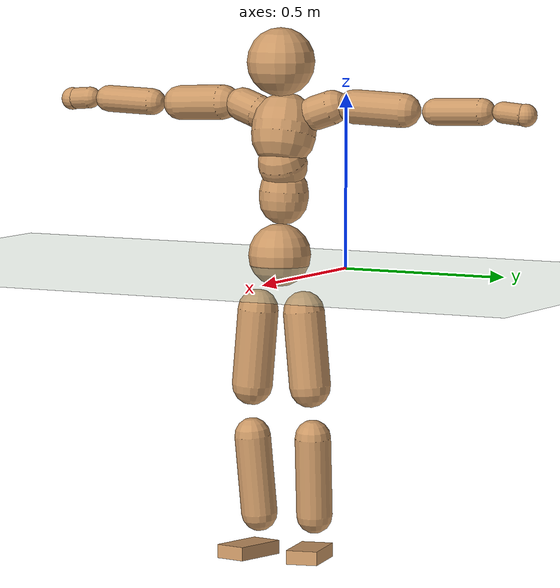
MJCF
<mujoco model="humanoid">
  <compiler coordinate="local"/>
  <default>
    <joint damping="0.0" armature="0.01" stiffness="0.0" limited="true"/>
    <geom conaffinity="1" condim="3" contype="7" margin="0.001" rgba="0.8 0.6 .4 1"/>
  </default>
  <asset>
    <texture type="skybox" builtin="gradient" rgb1=".4 .5 .6" rgb2="0 0 0" width="100" height="100"/>
    <texture builtin="flat" height="1278" mark="cross" markrgb="1 1 1" name="texgeom" random="0.01" rgb1="0.8 0.6 0.4" rgb2="0.8 0.6 0.4" type="cube" width="127"/>
    <texture builtin="checker" height="100" name="texplane" rgb1="0 0 0" rgb2="0.8 0.8 0.8" type="2d" width="100"/>
    <material name="MatPlane" reflectance="0.5" shininess="1" specular="1" texrepeat="60 60" texture="texplane"/>
    <material name="geom" texture="texgeom" texuniform="true"/>
  </asset>
  <worldbody>
    <light cutoff="100" diffuse="1 1 1" dir="-0 0 -1.3" directional="true" exponent="1" pos="0 0 1.3" specular=".1 .1 .1"/>
    <geom conaffinity="1" condim="3" name="floor" pos="0 0 0" rgba="0.8 0.9 0.8 1" size="100 100 .2" type="plane" material="MatPlane"/>
    <body name="Pelvis" pos="-0.0015 -0.2161 0.0285">
      <freejoint name="Pelvis"/>
      <geom type="sphere" contype="1" conaffinity="1" density="500" size="0.0910" pos="0.0000 0.0000 0.0000" name="Pelvis"/>
      <body name="L_Hip" pos="-0.0066 0.0682 -0.0887">
        <joint name="L_Hip_x" type="hinge" pos="0 0 0" axis="1 0 0" stiffness="800" damping="80" armature="0.02" range="-180.0000 180.0000"/>
        <joint name="L_Hip_y" type="hinge" pos="0 0 0" axis="0 1 0" stiffness="800" damping="80" armature="0.02" range="-180.0000 180.0000"/>
        <joint name="L_Hip_z" type="hinge" pos="0 0 0" axis="0 0 1" stiffness="800" damping="80" armature="0.02" range="-180.0000 180.0000"/>
        <geom type="capsule" contype="1" conaffinity="1" density="500" fromto="-0.0006 0.0066 -0.0725 -0.0026 0.0262 -0.2901" size="0.0598" name="L_Hip"/>
        <body name="L_Knee" pos="-0.0032 0.0328 -0.3626">
          <joint name="L_Knee_x" type="hinge" pos="0 0 0" axis="1 0 0" stiffness="800" damping="80" armature="0.02" range="-180.0000 180.0000"/>
          <joint name="L_Knee_y" type="hinge" pos="0 0 0" axis="0 1 0" stiffness="800" damping="80" armature="0.02" range="-180.0000 180.0000"/>
          <joint name="L_Knee_z" type="hinge" pos="0 0 0" axis="0 0 1" stiffness="800" damping="80" armature="0.02" range="-180.0000 180.0000"/>
          <geom type="capsule" contype="1" conaffinity="1" density="500" fromto="-0.0084 -0.0025 -0.0767 -0.0336 -0.0102 -0.3069" size="0.0524" name="L_Knee"/>
          <body name="L_Ankle" pos="-0.042 -0.0127 -0.3837">
            <joint name="L_Ankle_x" type="hinge" pos="0 0 0" axis="1 0 0" stiffness="800" damping="80" armature="0.02" range="-180.0000 180.0000"/>
            <joint name="L_Ankle_y" type="hinge" pos="0 0 0" axis="0 1 0" stiffness="800" damping="80" armature="0.02" range="-180.0000 180.0000"/>
            <joint name="L_Ankle_z" type="hinge" pos="0 0 0" axis="0 0 1" stiffness="800" damping="80" armature="0.02" range="-180.0000 180.0000"/>
            <geom type="box" contype="1" conaffinity="1" density="500" pos="0.0581 0.0122 -0.0271" size="0.0832 0.0461 0.0201" quat="0.9946 0.0000 0.0000 0.1033" name="L_Ankle"/>
            <body name="L_Toe" pos="0.1162 0.0244 -0.0543">
              <joint name="L_Toe_x" type="hinge" pos="0 0 0" axis="1 0 0" stiffness="500" damping="50" armature="0.02" range="-180.0000 180.0000"/>
              <joint name="L_Toe_y" type="hinge" pos="0 0 0" axis="0 1 0" stiffness="500" damping="50" armature="0.02" range="-180.0000 180.0000"/>
              <joint name="L_Toe_z" type="hinge" pos="0 0 0" axis="0 0 1" stiffness="500" damping="50" armature="0.02" range="-180.0000 180.0000"/>
              <geom type="box" contype="1" conaffinity="1" density="500" pos="0.0000 0.0000 0.0264" size="0.001 0.0023 0.001" quat="0.9940 0.0000 0.0000 0.1097" name="L_Toe"/>
            </body>
          </body>
        </body>
      </body>
      <body name="R_Hip" pos="-0.0038 -0.0662 -0.0877">
        <joint name="R_Hip_x" type="hinge" pos="0 0 0" axis="1 0 0" stiffness="800" damping="80" armature="0.02" range="-180.0000 180.0000"/>
        <joint name="R_Hip_y" type="hinge" pos="0 0 0" axis="0 1 0" stiffness="800" damping="80" armature="0.02" range="-180.0000 180.0000"/>
        <joint name="R_Hip_z" type="hinge" pos="0 0 0" axis="0 0 1" stiffness="800" damping="80" armature="0.02" range="-180.0000 180.0000"/>
        <geom type="capsule" contype="1" conaffinity="1" density="500" fromto="-0.0014 -0.0073 -0.0740 -0.0055 -0.0293 -0.2958" size="0.059" name="R_Hip"/>
        <body name="R_Knee" pos="-0.0069 -0.0367 -0.3698">
          <joint name="R_Knee_x" type="hinge" pos="0 0 0" axis="1 0 0" stiffness="800" damping="80" armature="0.02" range="-180.0000 180.0000"/>
          <joint name="R_Knee_y" type="hinge" pos="0 0 0" axis="0 1 0" stiffness="800" damping="80" armature="0.02" range="-180.0000 180.0000"/>
          <joint name="R_Knee_z" type="hinge" pos="0 0 0" axis="0 0 1" stiffness="800" damping="80" armature="0.02" range="-180.0000 180.0000"/>
          <geom type="capsule" contype="1" conaffinity="1" density="500" fromto="-0.0082 0.0030 -0.0768 -0.0326 0.0118 -0.3070" size="0.0526" name="R_Knee"/>
          <body name="R_Ankle" pos="-0.0408 0.0148 -0.3838">
            <joint name="R_Ankle_x" type="hinge" pos="0 0 0" axis="1 0 0" stiffness="800" damping="80" armature="0.02" range="-180.0000 180.0000"/>
            <joint name="R_Ankle_y" type="hinge" pos="0 0 0" axis="0 1 0" stiffness="800" damping="80" armature="0.02" range="-180.0000 180.0000"/>
            <joint name="R_Ankle_z" type="hinge" pos="0 0 0" axis="0 0 1" stiffness="800" damping="80" armature="0.02" range="-180.0000 180.0000"/>
            <geom type="box" contype="1" conaffinity="1" density="500" pos="0.0599 -0.0113 -0.0230" size="0.0843 0.0467 0.0198" quat="0.9957 0.0000 0.0000 -0.0930" name="R_Ankle"/>
            <body name="R_Toe" pos="0.1199 -0.0226 -0.046">
              <joint name="R_Toe_x" type="hinge" pos="0 0 0" axis="1 0 0" stiffness="500" damping="50" armature="0.02" range="-180.0000 180.0000"/>
              <joint name="R_Toe_y" type="hinge" pos="0 0 0" axis="0 1 0" stiffness="500" damping="50" armature="0.02" range="-180.0000 180.0000"/>
              <joint name="R_Toe_z" type="hinge" pos="0 0 0" axis="0 0 1" stiffness="500" damping="50" armature="0.02" range="-180.0000 180.0000"/>
              <geom type="box" contype="1" conaffinity="1" density="500" pos="0.0000 0.0000 0.0242" size="0.0009 0.0023 0.0011" quat="0.9965 0.0000 0.0000 -0.0836" name="R_Toe"/>
            </body>
          </body>
        </body>
      </body>
      <body name="Torso" pos="-0.0249 -0.0025 0.1047">
        <joint name="Torso_x" type="hinge" pos="0 0 0" axis="1 0 0" stiffness="1000" damping="100" armature="0.02" range="-180.0000 180.0000"/>
        <joint name="Torso_y" type="hinge" pos="0 0 0" axis="0 1 0" stiffness="1000" damping="100" armature="0.02" range="-180.0000 180.0000"/>
        <joint name="Torso_z" type="hinge" pos="0 0 0" axis="0 0 1" stiffness="1000" damping="100" armature="0.02" range="-180.0000 180.0000"/>
        <geom type="capsule" contype="1" conaffinity="1" density="500" fromto="-0.0005 0.0029 0.0786 -0.0004 0.0019 0.0524" size="0.0712" name="Torso"/>
        <body name="Spine" pos="-0.0009 0.0048 0.131">
          <joint name="Spine_x" type="hinge" pos="0 0 0" axis="1 0 0" stiffness="1000" damping="100" armature="0.02" range="-180.0000 180.0000"/>
          <joint name="Spine_y" type="hinge" pos="0 0 0" axis="0 1 0" stiffness="1000" damping="100" armature="0.02" range="-180.0000 180.0000"/>
          <joint name="Spine_z" type="hinge" pos="0 0 0" axis="0 0 1" stiffness="1000" damping="100" armature="0.02" range="-180.0000 180.0000"/>
          <geom type="capsule" contype="1" conaffinity="1" density="500" fromto="0.0149 0.0010 0.0303 0.0099 0.0007 0.0202" size="0.0711" name="Spine"/>
          <body name="Chest" pos="0.0248 0.0017 0.0504">
            <joint name="Chest_x" type="hinge" pos="0 0 0" axis="1 0 0" stiffness="1000" damping="100" armature="0.02" range="-180.0000 180.0000"/>
            <joint name="Chest_y" type="hinge" pos="0 0 0" axis="0 1 0" stiffness="1000" damping="100" armature="0.02" range="-180.0000 180.0000"/>
            <joint name="Chest_z" type="hinge" pos="0 0 0" axis="0 0 1" stiffness="1000" damping="100" armature="0.02" range="-180.0000 180.0000"/>
            <geom type="capsule" contype="1" conaffinity="1" density="500" fromto="-0.0240 -0.0010 0.0883 -0.0160 -0.0007 0.0589" size="0.0936" name="Chest"/>
            <body name="Neck" pos="-0.0452 -0.0024 0.208">
              <joint name="Neck_x" type="hinge" pos="0 0 0" axis="1 0 0" stiffness="500" damping="50" armature="0.02" range="-180.0000 180.0000"/>
              <joint name="Neck_y" type="hinge" pos="0 0 0" axis="0 1 0" stiffness="500" damping="50" armature="0.02" range="-180.0000 180.0000"/>
              <joint name="Neck_z" type="hinge" pos="0 0 0" axis="0 0 1" stiffness="500" damping="50" armature="0.02" range="-180.0000 180.0000"/>
              <geom type="capsule" contype="1" conaffinity="1" density="500" fromto="0.0100 0.0010 0.0126 0.0400 0.0040 0.0503" size="0.0418" name="Neck"/>
              <body name="Head" pos="0.05 0.005 0.0629">
                <joint name="Head_x" type="hinge" pos="0 0 0" axis="1 0 0" stiffness="500" damping="50" armature="0.02" range="-180.0000 180.0000"/>
                <joint name="Head_y" type="hinge" pos="0 0 0" axis="0 1 0" stiffness="500" damping="50" armature="0.02" range="-180.0000 180.0000"/>
                <joint name="Head_z" type="hinge" pos="0 0 0" axis="0 0 1" stiffness="500" damping="50" armature="0.02" range="-180.0000 180.0000"/>
                <geom type="sphere" contype="1" conaffinity="1" density="500" size="0.0988" pos="0.0000 0.0000 0.0000" name="Head"/>
              </body>
            </body>
            <body name="L_Thorax" pos="-0.0352 0.0748 0.1182">
              <joint name="L_Thorax_x" type="hinge" pos="0 0 0" axis="1 0 0" stiffness="500" damping="50" armature="0.02" range="-180.0000 180.0000"/>
              <joint name="L_Thorax_y" type="hinge" pos="0 0 0" axis="0 1 0" stiffness="500" damping="50" armature="0.02" range="-180.0000 180.0000"/>
              <joint name="L_Thorax_z" type="hinge" pos="0 0 0" axis="0 0 1" stiffness="500" damping="50" armature="0.02" range="-180.0000 180.0000"/>
              <geom type="capsule" contype="1" conaffinity="1" density="500" fromto="-0.0014 0.0174 0.0060 -0.0056 0.0696 0.0240" size="0.0498" name="L_Thorax"/>
              <body name="L_Shoulder" pos="-0.007 0.0871 0.03">
                <joint name="L_Shoulder_x" type="hinge" pos="0 0 0" axis="1 0 0" stiffness="500" damping="50" armature="0.02" range="-720.0000 720.0000"/>
                <joint name="L_Shoulder_y" type="hinge" pos="0 0 0" axis="0 1 0" stiffness="500" damping="50" armature="0.02" range="-720.0000 720.0000"/>
                <joint name="L_Shoulder_z" type="hinge" pos="0 0 0" axis="0 0 1" stiffness="500" damping="50" armature="0.02" range="-720.0000 720.0000"/>
                <geom type="capsule" contype="1" conaffinity="1" density="500" fromto="-0.0053 0.0502 -0.0023 -0.0214 0.2008 -0.0094" size="0.0494" name="L_Shoulder"/>
                <body name="L_Elbow" pos="-0.0267 0.2509 -0.0117">
                  <joint name="L_Elbow_x" type="hinge" pos="0 0 0" axis="1 0 0" stiffness="500" damping="50" armature="0.02" range="-720.0000 720.0000"/>
                  <joint name="L_Elbow_y" type="hinge" pos="0 0 0" axis="0 1 0" stiffness="500" damping="50" armature="0.02" range="-720.0000 720.0000"/>
                  <joint name="L_Elbow_z" type="hinge" pos="0 0 0" axis="0 0 1" stiffness="500" damping="50" armature="0.02" range="-720.0000 720.0000"/>
                  <geom type="capsule" contype="1" conaffinity="1" density="500" fromto="-0.0002 0.0484 0.0017 -0.0007 0.1936 0.0069" size="0.0389" name="L_Elbow"/>
                  <body name="L_Wrist" pos="-0.0009 0.242 0.0086">
                    <joint name="L_Wrist_x" type="hinge" pos="0 0 0" axis="1 0 0" stiffness="300" damping="30" armature="0.02" range="-180.0000 180.0000"/>
                    <joint name="L_Wrist_y" type="hinge" pos="0 0 0" axis="0 1 0" stiffness="300" damping="30" armature="0.02" range="-180.0000 180.0000"/>
                    <joint name="L_Wrist_z" type="hinge" pos="0 0 0" axis="0 0 1" stiffness="300" damping="30" armature="0.02" range="-180.0000 180.0000"/>
                    <geom type="capsule" contype="1" conaffinity="1" density="500" fromto="-0.0028 0.0163 -0.0017 -0.0114 0.0653 -0.0069" size="0.0308" name="L_Wrist"/>
                    <body name="L_Hand" pos="-0.0142 0.0816 -0.0086">
                      <joint name="L_Hand_x" type="hinge" pos="0 0 0" axis="1 0 0" stiffness="300" damping="30" armature="0.02" range="-180.0000 180.0000"/>
                      <joint name="L_Hand_y" type="hinge" pos="0 0 0" axis="0 1 0" stiffness="300" damping="30" armature="0.02" range="-180.0000 180.0000"/>
                      <joint name="L_Hand_z" type="hinge" pos="0 0 0" axis="0 0 1" stiffness="300" damping="30" armature="0.02" range="-180.0000 180.0000"/>
                      <geom type="sphere" contype="1" conaffinity="1" density="500" size="0.0327" pos="0.0000 0.0000 0.0000" name="L_Hand"/>
                    </body>
                  </body>
                </body>
              </body>
            </body>
            <body name="R_Thorax" pos="-0.0398 -0.0774 0.1156">
              <joint name="R_Thorax_x" type="hinge" pos="0 0 0" axis="1 0 0" stiffness="500" damping="50" armature="0.02" range="-180.0000 180.0000"/>
              <joint name="R_Thorax_y" type="hinge" pos="0 0 0" axis="0 1 0" stiffness="500" damping="50" armature="0.02" range="-180.0000 180.0000"/>
              <joint name="R_Thorax_z" type="hinge" pos="0 0 0" axis="0 0 1" stiffness="500" damping="50" armature="0.02" range="-180.0000 180.0000"/>
              <geom type="capsule" contype="1" conaffinity="1" density="500" fromto="-0.0017 -0.0184 0.0063 -0.0070 -0.0735 0.0251" size="0.0489" name="R_Thorax"/>
              <body name="R_Shoulder" pos="-0.0087 -0.0919 0.0314">
                <joint name="R_Shoulder_x" type="hinge" pos="0 0 0" axis="1 0 0" stiffness="500" damping="50" armature="0.02" range="-720.0000 720.0000"/>
                <joint name="R_Shoulder_y" type="hinge" pos="0 0 0" axis="0 1 0" stiffness="500" damping="50" armature="0.02" range="-720.0000 720.0000"/>
                <joint name="R_Shoulder_z" type="hinge" pos="0 0 0" axis="0 0 1" stiffness="500" damping="50" armature="0.02" range="-720.0000 720.0000"/>
                <geom type="capsule" contype="1" conaffinity="1" density="500" fromto="-0.0040 -0.0493 -0.0024 -0.0159 -0.1970 -0.0097" size="0.0507" name="R_Shoulder"/>
                <body name="R_Elbow" pos="-0.0199 -0.2463 -0.0121">
                  <joint name="R_Elbow_x" type="hinge" pos="0 0 0" axis="1 0 0" stiffness="500" damping="50" armature="0.02" range="-720.0000 720.0000"/>
                  <joint name="R_Elbow_y" type="hinge" pos="0 0 0" axis="0 1 0" stiffness="500" damping="50" armature="0.02" range="-720.0000 720.0000"/>
                  <joint name="R_Elbow_z" type="hinge" pos="0 0 0" axis="0 0 1" stiffness="500" damping="50" armature="0.02" range="-720.0000 720.0000"/>
                  <geom type="capsule" contype="1" conaffinity="1" density="500" fromto="-0.0010 -0.0496 0.0015 -0.0042 -0.1986 0.0059" size="0.039" name="R_Elbow"/>
                  <body name="R_Wrist" pos="-0.0052 -0.2482 0.0074">
                    <joint name="R_Wrist_x" type="hinge" pos="0 0 0" axis="1 0 0" stiffness="300" damping="30" armature="0.02" range="-180.0000 180.0000"/>
                    <joint name="R_Wrist_y" type="hinge" pos="0 0 0" axis="0 1 0" stiffness="300" damping="30" armature="0.02" range="-180.0000 180.0000"/>
                    <joint name="R_Wrist_z" type="hinge" pos="0 0 0" axis="0 0 1" stiffness="300" damping="30" armature="0.02" range="-180.0000 180.0000"/>
                    <geom type="capsule" contype="1" conaffinity="1" density="500" fromto="-0.0021 -0.0165 -0.0013 -0.0082 -0.0659 -0.0052" size="0.0316" name="R_Wrist"/>
                    <body name="R_Hand" pos="-0.0103 -0.0824 -0.0065">
                      <joint name="R_Hand_x" type="hinge" pos="0 0 0" axis="1 0 0" stiffness="300" damping="30" armature="0.02" range="-180.0000 180.0000"/>
                      <joint name="R_Hand_y" type="hinge" pos="0 0 0" axis="0 1 0" stiffness="300" damping="30" armature="0.02" range="-180.0000 180.0000"/>
                      <joint name="R_Hand_z" type="hinge" pos="0 0 0" axis="0 0 1" stiffness="300" damping="30" armature="0.02" range="-180.0000 180.0000"/>
                      <geom type="sphere" contype="1" conaffinity="1" density="500" size="0.0331" pos="0.0000 0.0000 0.0000" name="R_Hand"/>
                    </body>
                  </body>
                </body>
              </body>
            </body>
          </body>
        </body>
      </body>
    </body>
  </worldbody>
  <actuator>
    <motor name="L_Hip_x" joint="L_Hip_x" gear="500"/>
    <motor name="L_Hip_y" joint="L_Hip_y" gear="500"/>
    <motor name="L_Hip_z" joint="L_Hip_z" gear="500"/>
    <motor name="L_Knee_x" joint="L_Knee_x" gear="500"/>
    <motor name="L_Knee_y" joint="L_Knee_y" gear="500"/>
    <motor name="L_Knee_z" joint="L_Knee_z" gear="500"/>
    <motor name="L_Ankle_x" joint="L_Ankle_x" gear="500"/>
    <motor name="L_Ankle_y" joint="L_Ankle_y" gear="500"/>
    <motor name="L_Ankle_z" joint="L_Ankle_z" gear="500"/>
    <motor name="L_Toe_x" joint="L_Toe_x" gear="500"/>
    <motor name="L_Toe_y" joint="L_Toe_y" gear="500"/>
    <motor name="L_Toe_z" joint="L_Toe_z" gear="500"/>
    <motor name="R_Hip_x" joint="R_Hip_x" gear="500"/>
    <motor name="R_Hip_y" joint="R_Hip_y" gear="500"/>
    <motor name="R_Hip_z" joint="R_Hip_z" gear="500"/>
    <motor name="R_Knee_x" joint="R_Knee_x" gear="500"/>
    <motor name="R_Knee_y" joint="R_Knee_y" gear="500"/>
    <motor name="R_Knee_z" joint="R_Knee_z" gear="500"/>
    <motor name="R_Ankle_x" joint="R_Ankle_x" gear="500"/>
    <motor name="R_Ankle_y" joint="R_Ankle_y" gear="500"/>
    <motor name="R_Ankle_z" joint="R_Ankle_z" gear="500"/>
    <motor name="R_Toe_x" joint="R_Toe_x" gear="500"/>
    <motor name="R_Toe_y" joint="R_Toe_y" gear="500"/>
    <motor name="R_Toe_z" joint="R_Toe_z" gear="500"/>
    <motor name="Torso_x" joint="Torso_x" gear="500"/>
    <motor name="Torso_y" joint="Torso_y" gear="500"/>
    <motor name="Torso_z" joint="Torso_z" gear="500"/>
    <motor name="Spine_x" joint="Spine_x" gear="500"/>
    <motor name="Spine_y" joint="Spine_y" gear="500"/>
    <motor name="Spine_z" joint="Spine_z" gear="500"/>
    <motor name="Chest_x" joint="Chest_x" gear="500"/>
    <motor name="Chest_y" joint="Chest_y" gear="500"/>
    <motor name="Chest_z" joint="Chest_z" gear="500"/>
    <motor name="Neck_x" joint="Neck_x" gear="500"/>
    <motor name="Neck_y" joint="Neck_y" gear="500"/>
    <motor name="Neck_z" joint="Neck_z" gear="500"/>
    <motor name="Head_x" joint="Head_x" gear="500"/>
    <motor name="Head_y" joint="Head_y" gear="500"/>
    <motor name="Head_z" joint="Head_z" gear="500"/>
    <motor name="L_Thorax_x" joint="L_Thorax_x" gear="500"/>
    <motor name="L_Thorax_y" joint="L_Thorax_y" gear="500"/>
    <motor name="L_Thorax_z" joint="L_Thorax_z" gear="500"/>
    <motor name="L_Shoulder_x" joint="L_Shoulder_x" gear="500"/>
    <motor name="L_Shoulder_y" joint="L_Shoulder_y" gear="500"/>
    <motor name="L_Shoulder_z" joint="L_Shoulder_z" gear="500"/>
    <motor name="L_Elbow_x" joint="L_Elbow_x" gear="500"/>
    <motor name="L_Elbow_y" joint="L_Elbow_y" gear="500"/>
    <motor name="L_Elbow_z" joint="L_Elbow_z" gear="500"/>
    <motor name="L_Wrist_x" joint="L_Wrist_x" gear="500"/>
    <motor name="L_Wrist_y" joint="L_Wrist_y" gear="500"/>
    <motor name="L_Wrist_z" joint="L_Wrist_z" gear="500"/>
    <motor name="L_Hand_x" joint="L_Hand_x" gear="500"/>
    <motor name="L_Hand_y" joint="L_Hand_y" gear="500"/>
    <motor name="L_Hand_z" joint="L_Hand_z" gear="500"/>
    <motor name="R_Thorax_x" joint="R_Thorax_x" gear="500"/>
    <motor name="R_Thorax_y" joint="R_Thorax_y" gear="500"/>
    <motor name="R_Thorax_z" joint="R_Thorax_z" gear="500"/>
    <motor name="R_Shoulder_x" joint="R_Shoulder_x" gear="500"/>
    <motor name="R_Shoulder_y" joint="R_Shoulder_y" gear="500"/>
    <motor name="R_Shoulder_z" joint="R_Shoulder_z" gear="500"/>
    <motor name="R_Elbow_x" joint="R_Elbow_x" gear="500"/>
    <motor name="R_Elbow_y" joint="R_Elbow_y" gear="500"/>
    <motor name="R_Elbow_z" joint="R_Elbow_z" gear="500"/>
    <motor name="R_Wrist_x" joint="R_Wrist_x" gear="500"/>
    <motor name="R_Wrist_y" joint="R_Wrist_y" gear="500"/>
    <motor name="R_Wrist_z" joint="R_Wrist_z" gear="500"/>
    <motor name="R_Hand_x" joint="R_Hand_x" gear="500"/>
    <motor name="R_Hand_y" joint="R_Hand_y" gear="500"/>
    <motor name="R_Hand_z" joint="R_Hand_z" gear="500"/>
  </actuator>
  <contact>
    <exclude body1="Torso" body2="Chest"/>
    <exclude body1="Head" body2="Chest"/>
    <exclude body1="R_Knee" body2="R_Toe"/>
    <exclude body1="R_Knee" body2="L_Ankle"/>
    <exclude body1="R_Knee" body2="L_Toe"/>
    <exclude body1="L_Knee" body2="L_Toe"/>
    <exclude body1="L_Knee" body2="R_Ankle"/>
    <exclude body1="L_Knee" body2="R_Toe"/>
    <exclude body1="L_Shoulder" body2="Chest"/>
    <exclude body1="R_Shoulder" body2="Chest"/>
  </contact>
  <sensor/>
  <size njmax="700" nconmax="700"/>
</mujoco>
